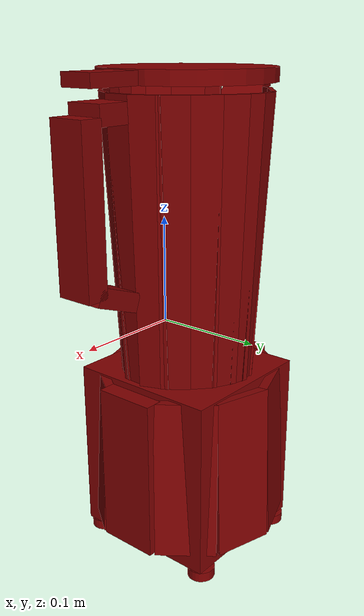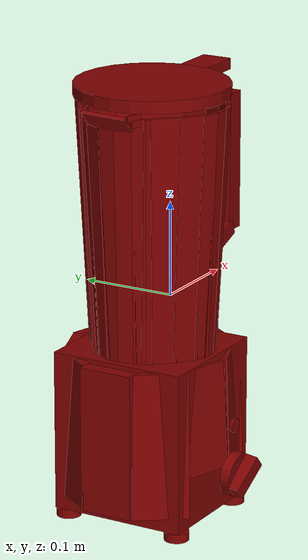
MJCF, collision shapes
<?xml version='1.0' encoding='UTF-8'?>
<mujoco model="model">
  <option timestep="0.002" gravity="0.0 0.0 -9.81"/>
  <compiler angle="radian"/>
  <asset>
    <mesh file="visuals/Blade001.obj" name="Blade001_vis"/>
    <mesh file="visuals/Body001.obj" name="Body001_vis"/>
    <mesh file="visuals/Button001.obj" name="Button001_vis"/>
    <mesh file="visuals/Jug001.obj" name="Jug001_vis"/>
    <mesh file="visuals/Jug001_Clear.obj" name="Jug001_Clear_vis"/>
    <mesh file="visuals/Knob001.obj" name="Knob001_vis"/>
    <mesh file="visuals/Lid001.obj" name="Lid001_vis"/>
    <texture file="visuals/T_BC001.png" name="Body001_material" type="2d"/>
    <material name="Body001_material" rgba="1 1 1 1.0" texture="Body001_material" shininess="0.1" specular="4"/>
    <texture file="visuals/T_BC001.png" name="Button001_material" type="2d"/>
    <material name="Button001_material" rgba="1 1 1 1.0" texture="Button001_material" shininess="0.1" specular="4"/>
    <texture file="visuals/T_BC001.png" name="Jug001_Clear_material" type="2d"/>
    <material name="Jug001_Clear_material" rgba="1 1 1 0.699999988079071" texture="Jug001_Clear_material" shininess="0.141421377658844" specular="0.3103448502657381"/>
    <texture file="visuals/T_BC001.png" name="Blade001_material" type="2d"/>
    <material name="Blade001_material" rgba="1 1 1 1.0" texture="Blade001_material" shininess="0.1" specular="4"/>
    <texture file="visuals/T_BC001.png" name="Jug001_material" type="2d"/>
    <material name="Jug001_material" rgba="1 1 1 1.0" texture="Jug001_material" shininess="0.1" specular="4"/>
    <texture file="visuals/T_BC001.png" name="Lid001_material" type="2d"/>
    <material name="Lid001_material" rgba="1 1 1 1.0" texture="Lid001_material" shininess="0.1" specular="4"/>
    <texture file="visuals/T_BC001.png" name="Knob001_material" type="2d"/>
    <material name="Knob001_material" rgba="1 1 1 1.0" texture="Knob001_material" shininess="0.1" specular="4"/>
  </asset>
  <default>
    <default class="visual">
      <geom conaffinity="0" contype="0" group="1" type="mesh"/>
    </default>
    <default class="collision">
      <geom group="0" rgba="0.5 0 0 0.5"/>
    </default>
    <default class="spawn">
      <geom group="0" rgba="1 1 1 0.5" contype="0" conaffinity="0"/>
      <site group="0" rgba="1 1 1 0.5"/>
    </default>
    <default class="region">
      <geom group="1" conaffinity="0" contype="0" rgba="0 1 0 0"/>
    </default>
  </default>
  <worldbody>
    <body>
      <body name="object">
        <geom mesh="Body001_vis" type="mesh" solimp="0.998 0.998 0.001" solref="0.001 1" friction="0.95 0.3 0.1" class="visual" material="Body001_material"/>
        <geom class="collision" type="box" pos="-0.020425 0.010578 -0.135682" size="0.07114976644515991 0.07396972179412842 0.08590729534626007" quat="1.0 0.0 0.0 0.0" density="1000.0"/>
        <geom class="collision" type="cylinder" pos="-0.079273 -0.054104 -0.227276" size="0.01308267842978239 0.00483639445155859" quat="1.0 0.0 0.0 0.0" density="1000.0"/>
        <geom class="collision" type="cylinder" pos="0.038333 -0.054104 -0.227276" size="0.01308267842978239 0.00483639445155859" quat="1.0 0.0 0.0 0.0" density="1000.0"/>
        <geom class="collision" type="cylinder" pos="-0.079273 0.075818 -0.227276" size="0.01308267842978239 0.00483639445155859" quat="1.0 0.0 0.0 0.0" density="1000.0"/>
        <geom class="collision" type="cylinder" pos="0.038333 0.075818 -0.227276" size="0.01308267842978239 0.00483639445155859" quat="1.0 0.0 0.0 0.0" density="1000.0"/>
        <geom class="collision" type="box" pos="-0.106769 0.009860 -0.129311" size="0.007698316592723131 0.02908378839492798 0.07778923213481903" quat="1.0 0.0 0.0 0.0" density="1000.0"/>
        <geom class="collision" type="box" pos="-0.093076 0.057243 -0.129311" size="0.0043806531466543674 0.029083790257573128 0.07767295092344284" quat="0.9581294655799866 0.006108235102146864 0.02049650065600872 -0.28553539514541626" density="1000.0"/>
        <geom class="collision" type="box" pos="-0.051305 0.091214 -0.129311" size="0.00438065268099308 0.029083792120218277 0.07767295092344284" quat="0.8213495016098022 0.012194070965051651 0.01757046952843666 -0.5700241923332214" density="1000.0"/>
        <geom class="collision" type="box" pos="0.002473 0.093833 -0.129311" size="0.0043806531466543674 0.02908378094434738 0.07767295092344284" quat="0.6026906967163086 0.017064303159713745 0.01289287582039833 -0.7976882457733154" density="1000.0"/>
        <geom class="collision" type="box" pos="0.047348 0.064081 -0.129311" size="0.004380653612315655 0.02908378839492798 0.07767295092344284" quat="0.3239506483078003 0.020233428105711937 0.006930013187229633 -0.9458321928977966" density="1000.0"/>
        <geom class="collision" type="box" pos="0.065871 0.013526 -0.129311" size="0.008447176776826382 0.02927297353744507 0.07778921723365784" quat="1.0 0.0 0.0 0.0" density="1000.0"/>
        <geom class="collision" type="box" pos="0.050841 -0.038176 -0.129311" size="0.0043806531466543674 0.029083792120218277 0.07767295092344284" quat="0.29940521717071533 -0.020405719056725502 0.0064049335196614265 0.9538863301277161" density="1000.0"/>
        <geom class="collision" type="box" pos="0.006934 -0.067495 -0.108718" size="0.0016447921516373754 0.02908378653228283 0.05694369226694107" quat="0.5818799734115601 -0.017391711473464966 0.012447686865925789 0.8129934072494507" density="1000.0"/>
        <geom class="collision" type="box" pos="-0.044628 -0.068487 -0.109307" size="0.0015786336734890938 0.029083790257573128 0.05753026157617569" quat="0.8063479661941528 -0.012643959373235703 0.01724955067038536 0.5910546183586121" density="1000.0"/>
        <geom class="collision" type="box" pos="-0.089722 -0.040937 -0.129311" size="0.004380652215331793 0.02908378653228283 0.07767295092344284" quat="0.9504324793815613 -0.006635751109570265 0.02033185213804245 0.31019455194473267" density="1000.0"/>
        <body name="Button001">
          <joint axis="0.0 1.0 0.0" pos="-0.045038 -0.085252 -0.155139" limited="true" name="Button001_joint" range="0.0 0.0005" type="slide" damping="1" frictionloss="1" armature=".01" stiffness="0.05"/>
          <geom mesh="Button001_vis" type="mesh" solimp="0.998 0.998 0.001" solref="0.001 1" friction="0.95 0.3 0.1" class="visual" material="Button001_material"/>
          <geom class="collision" type="cylinder" pos="-0.019819 -0.088158 -0.120115" size="0.007343614939600229 0.0016827437793835998" quat="0.7071067094802856 0.7071068286895752 0.0 0.0" density="1000.0"/>
        </body>
        <body name="Jug001_Clear">
          <geom class="region" name="reg_int" type="box" pos="-0.020664 0.009729500000000002 0.09984649999999999" size="0.063328 0.0627345 0.1166465"/>
          <joint axis="0.0 0.0 1.0" pos="0.000791 0.008689 0.084590" limited="true" name="Jug001_Clear_joint" range="0.0 0.1" type="slide" damping="1" frictionloss="1" armature=".01" stiffness="0.05"/>
          <geom mesh="Jug001_Clear_vis" type="mesh" solimp="0.998 0.998 0.001" solref="0.001 1" friction="0.95 0.3 0.1" class="visual" material="Jug001_Clear_material"/>
          <geom class="collision" type="box" pos="-0.059117 0.064398 0.081959" size="0.028023838996887207 0.0020834733732044697 0.13005328178405762" quat="0.9469504356384277 -0.02456554025411606 -0.008309957571327686 0.3203316628932953" density="1000.0"/>
          <geom class="collision" type="box" pos="0.002601 0.076044 0.081927" size="0.012392974458634853 0.0014961141860112548 0.12993013858795166" quat="0.9747089147567749 -0.025285642594099045 0.00575824873521924 -0.22196851670742035" density="1000.0"/>
          <geom class="collision" type="box" pos="-0.029463 0.081530 0.081655" size="0.009814273566007614 0.0016803478356450796 0.1300542801618576" quat="0.996727466583252 -0.025856811553239822 -0.0019861608743667603 0.07656250149011612" density="1000.0"/>
          <geom class="collision" type="box" pos="0.101808 -0.001526 0.121730" size="0.010741529986262321 0.01777033507823944 0.0739496573805809" quat="1.0 0.0 0.0 0.0" density="1000.0"/>
          <geom class="collision" type="box" pos="0.076898 -0.001526 0.043010" size="0.008844220079481602 0.01777033880352974 0.024057047441601753" quat="0.5734533071517944 -4.337584148605229e-15 -0.8192382454872131 -1.1007189471001766e-07" density="1000.0"/>
          <geom class="collision" type="box" pos="0.074342 -0.001526 0.197213" size="0.018335478380322456 0.017770294100046158 0.008909444324672222" quat="1.0 0.0 0.0 0.0" density="1000.0"/>
          <geom class="collision" type="box" pos="-0.013637 0.081463 0.081713" size="0.009814273566007614 0.0016803450416773558 0.1300542801618576" quat="0.9917929768562317 -0.025728829205036163 0.0032478119246661663 -0.1251964271068573" density="1000.0"/>
          <geom class="collision" type="box" pos="0.021820 0.063216 0.081892" size="0.013895096257328987 0.001496114069595933 0.13005328178405762" quat="0.9332175850868225 -0.02420927956700325 0.009296861477196217 -0.3583747446537018" density="1000.0"/>
          <geom class="collision" type="box" pos="0.038940 0.044985 0.081822" size="0.013895098119974136 0.0014961148845031857 0.1301158219575882" quat="0.8938452005386353 -0.023187892511487007 0.011612174101173878 -0.44762516021728516" density="1000.0"/>
          <geom class="collision" type="box" pos="0.049548 0.026145 0.081767" size="0.013895098119974136 0.001496114069595933 0.13005328178405762" quat="0.8285778164863586 -0.021494749933481216 0.01450851745903492 -0.5592730045318604" density="1000.0"/>
          <geom class="collision" type="box" pos="0.051627 0.002516 0.081692" size="0.013895095326006413 0.0014961144188418984 0.1301158219575882" quat="0.6938533186912537 -0.017999760806560516 0.018668951466679573 -0.7196492552757263" density="1000.0"/>
          <geom class="collision" type="box" pos="0.044334 -0.019255 0.081908" size="0.013895101845264435 0.0014961172128096223 0.13005328178405762" quat="0.4744383990764618 -0.012307754717767239 0.02282630279660225 -0.8799066543579102" density="1000.0"/>
          <geom class="collision" type="box" pos="0.027787 -0.039090 0.082002" size="0.013895097188651562 0.0014961173292249441 0.13005328178405762" quat="0.3675457537174225 -0.009534777142107487 0.024116583168506622 -0.9296438097953796" density="1000.0"/>
          <geom class="collision" type="box" pos="0.007308 -0.055324 0.082150" size="0.013895098119974136 0.0014961144188418984 0.12987081706523895" quat="0.27956363558769226 -0.007252366282045841 0.02489827573299408 -0.9597768783569336" density="1000.0"/>
          <geom class="collision" type="box" pos="-0.010352 -0.063875 0.081897" size="0.00841239932924509 0.001496114069595933 0.12990111112594604" quat="0.10235937684774399 -0.002655386459082365 0.02579679898917675 -0.9944093823432922" density="1000.0"/>
          <geom class="collision" type="box" pos="-0.025328 -0.065656 0.081740" size="0.00841239932924509 0.0014961144188418984 0.13000434637069702" quat="0.014749111607670784 -0.0003826175525318831 -0.025930186733603477 0.9995548725128174" density="1000.0"/>
          <geom class="collision" type="box" pos="-0.038845 -0.063171 0.081827" size="0.008412400260567665 0.0014961141860112548 0.12996487319469452" quat="0.18885262310504913 -0.004899164661765099 -0.025466036051511765 0.9816629886627197" density="1000.0"/>
          <geom class="collision" type="box" pos="-0.055416 -0.052828 0.081903" size="0.013023199513554573 0.0014961143024265766 0.13005898892879486" quat="0.3136133849620819 -0.008135673590004444 -0.024623794481158257 0.9491965770721436" density="1000.0"/>
          <geom class="collision" type="box" pos="-0.076211 -0.032602 0.082008" size="0.01790199801325798 0.0014961148845031857 0.13000606000423431" quat="0.4126756191253662 -0.010705524124205112 -0.023620188236236572 0.9105088114738464" density="1000.0"/>
          <geom class="collision" type="box" pos="-0.080403 0.046393 0.081970" size="0.009814275428652763 0.001680344925262034 0.1299208700656891" quat="0.8943629860877991 -0.02320133149623871 -0.011585312895476818 0.44658970832824707" density="1000.0"/>
          <geom class="collision" type="box" pos="-0.089073 0.030584 0.075382" size="0.009814274497330189 0.0016803450416773558 0.12314633280038834" quat="0.835515558719635 -0.02167471870779991 -0.014238237403333187 0.5488545298576355" density="1000.0"/>
          <geom class="collision" type="box" pos="-0.092614 0.015737 0.075188" size="0.009814275428652763 0.0016803451580926776 0.12331690639257431" quat="0.724690854549408 -0.018799737095832825 -0.017863113433122635 0.6885859966278076" density="1000.0"/>
          <geom class="collision" type="box" pos="-0.091700 -0.001619 0.075315" size="0.009814274497330189 0.0016803448088467121 0.1232306957244873" quat="0.6293444037437439 -0.016326285898685455 -0.020148780196905136 0.7766937017440796" density="1000.0"/>
          <geom class="collision" type="box" pos="-0.087247 -0.017950 0.081988" size="0.009814273566007614 0.0016803448088467121 0.12987521290779114" quat="0.5572676658630371 -0.014456488192081451 -0.02152976021170616 0.8299278616905212" density="1000.0"/>
          <geom class="collision" type="box" pos="-0.105044 0.011516 0.207989" size="0.0253608338534832 0.0016803448088467121 0.010355044156312943" quat="0.6644766330718994 -0.25481677055358887 -0.2662017047405243 0.6501352787017822" density="1000.0"/>
          <geom class="collision" type="box" pos="-0.100480 0.039515 0.214238" size="0.009460925124585629 0.0009152903221547604 0.0032383257057517767" quat="0.9881901741027832 0.0 0.0 0.15323251485824585" density="1000.0"/>
          <geom class="collision" type="box" pos="-0.097472 0.040198 0.207827" size="0.006173263303935528 0.0009152903221547604 0.0036670449189841747" quat="0.9871951937675476 0.0 0.0 0.15951703488826752" density="1000.0"/>
          <geom class="collision" type="box" pos="-0.101875 -0.017288 0.214238" size="0.009460925124585629 0.0009152903221547604 0.0032383257057517767" quat="0.9885324835777283 0.0 -0.0 -0.15100839734077454" density="1000.0"/>
          <geom class="collision" type="box" pos="-0.099019 -0.018453 0.207827" size="0.006173263303935528 0.0009152903221547604 0.0036670449189841747" quat="0.9894733428955078 0.0 -0.0 -0.14471545815467834" density="1000.0"/>
          <body name="Blade001">
            <joint axis="0.0 0.0 1.0" pos="-0.020521 0.008475 0.016824" limited="false" name="Blade001_joint" range="0 360" type="hinge" damping="1" frictionloss="1" armature=".01" stiffness="0.05"/>
            <geom mesh="Blade001_vis" type="mesh" solimp="0.998 0.998 0.001" solref="0.001 1" friction="0.95 0.3 0.1" class="visual" material="Blade001_material"/>
            <geom class="collision" type="cylinder" pos="-0.020762 0.008603 0.015648" size="0.005578401032835245 0.009748686105012894" quat="1.0 0.0 0.0 0.0" density="1000.0"/>
            <geom class="collision" type="box" pos="-0.042655 0.008259 0.017690" size="0.005888754967600107 0.005354186054319143 0.0005539986887015402" quat="0.9403565526008606 0.22859342396259308 0.2510433495044708 0.021257082000374794" density="1000.0"/>
            <geom class="collision" type="box" pos="-0.035212 0.009072 0.014279" size="0.002375200856477022 0.005354185588657856 0.0005539986887015402" quat="0.9515479207038879 0.15689902007579803 0.2630090117454529 0.02766765095293522" density="1000.0"/>
            <geom class="collision" type="box" pos="-0.030513 0.009405 0.012824" size="0.002375200856477022 0.005354185588657856 0.0005539986887015402" quat="0.9828904867172241 0.15931963920593262 0.09243089705705643 -0.00021640831255353987" density="1000.0"/>
            <geom class="collision" type="box" pos="-0.025778 0.009499 0.012182" size="0.002375200856477022 0.005354185588657856 0.0005539986887015402" quat="0.9911357164382935 0.09542809426784515 0.09225142747163773 0.005761029198765755" density="1000.0"/>
            <geom class="collision" type="box" pos="-0.013339 0.007884 0.012458" size="0.002375201089307666 0.005354185588657856 0.0005539986887015402" quat="0.9974440336227417 -0.06621213257312775 0.0006647424306720495 0.026849370449781418" density="1000.0"/>
            <geom class="collision" type="box" pos="-0.008574 0.008177 0.012820" size="0.0023752006236463785 0.005354185588657856 0.0005539987469092011" quat="0.9935071468353271 -0.08202355355024338 -0.07651028037071228 -0.019022971391677856" density="1000.0"/>
            <geom class="collision" type="box" pos="-0.004265 0.007704 0.013615" size="0.002375200856477022 0.005354186054319143 0.0005539986887015402" quat="0.985020101070404 -0.1533612459897995 -0.07494162023067474 -0.02448371797800064" density="1000.0"/>
            <geom class="collision" type="box" pos="0.000610 0.007834 0.015193" size="0.002375201089307666 0.005354186054319143 0.0005539986887015402" quat="0.957770824432373 -0.15528972446918488 -0.24198324978351593 0.0020541767589747906" density="1000.0"/>
            <geom class="collision" type="box" pos="0.004691 0.008164 0.017214" size="0.002375200856477022 0.005354185588657856 0.0005539986887015402" quat="0.9437424540519714 -0.2432917356491089 -0.21870483458042145 0.04824477806687355" density="1000.0"/>
            <geom class="collision" type="box" pos="0.007151 0.008693 0.018938" size="0.002375200856477022 0.005354185588657856 0.0005539986887015402" quat="0.8137325048446655 -0.31561368703842163 -0.3493519723415375 0.340852826833725" density="1000.0"/>
            <geom class="collision" type="box" pos="-0.022311 0.023493 0.020433" size="0.002061778213828802 0.005354185588657856 0.0005539987469092011" quat="0.7475223541259766 0.29476454854011536 0.07653047889471054 -0.5903111696243286" density="1000.0"/>
            <geom class="collision" type="box" pos="-0.021835 0.019641 0.019098" size="0.002375200856477022 0.005354185588657856 0.0005539986887015402" quat="0.7485984563827515 0.2202669084072113 0.013303541578352451 -0.6252246499061584" density="1000.0"/>
            <geom class="collision" type="box" pos="-0.021108 0.015899 0.018358" size="0.002375200856477022 0.005354185122996569 0.0005539986887015402" quat="0.7479897737503052 0.18121476471424103 -0.03297616168856621 -0.6376402378082275" density="1000.0"/>
            <geom class="collision" type="box" pos="-0.020840 0.006913 0.017694" size="0.002375200856477022 0.005354185588657856 0.0005539986887015402" quat="0.7766215205192566 -0.04996641352772713 0.0434492826461792 -0.6264778971672058" density="1000.0"/>
            <geom class="collision" type="box" pos="-0.019822 0.002221 0.017868" size="0.002375200856477022 0.005354185588657856 0.0005539986887015402" quat="0.7438734173774719 -0.11205488443374634 -0.0050377692095935345 -0.6588404178619385" density="1000.0"/>
            <geom class="collision" type="box" pos="-0.019578 -0.002074 0.018851" size="0.002375200856477022 0.005354185122996569 0.0005539986887015402" quat="0.7338717579841614 -0.16533643007278442 0.04242377728223801 -0.657492458820343" density="1000.0"/>
            <geom class="collision" type="box" pos="-0.018592 -0.006673 0.020749" size="0.002375200856477022 0.005354185588657856 0.0005539986887015402" quat="0.7303425669670105 -0.2751429080963135 -0.08346966654062271 -0.6196200251579285" density="1000.0"/>
            <geom class="collision" type="box" pos="-0.018192 -0.010862 0.022835" size="0.002375200856477022 0.005354185588657856 0.0005539986887015402" quat="0.7495883703231812 -0.3710985481739044 -0.09950321167707443 -0.538982629776001" density="1000.0"/>
            <geom class="collision" type="box" pos="-0.017144 -0.012421 0.024364" size="0.002375200856477022 0.005354185588657856 0.0005539986887015402" quat="0.8404426574707031 -0.4668102562427521 -0.06121203675866127 -0.26832324266433716" density="1000.0"/>
            <geom class="collision" type="box" pos="-0.022938 0.026926 0.022525" size="0.002061778213828802 0.005354185588657856 0.0005539987469092011" quat="0.740454375743866 0.31209465861320496 0.06276106834411621 -0.59193354845047" density="1000.0"/>
            <geom class="collision" type="box" pos="-0.024203 0.030077 0.024873" size="0.002061778213828802 0.005354185122996569 0.0005539987469092011" quat="0.7192190885543823 0.35832902789115906 0.025174571201205254 -0.5947188138961792" density="1000.0"/>
          </body>
          <body name="Jug001">
            <geom mesh="Jug001_vis" type="mesh" solimp="0.998 0.998 0.001" solref="0.001 1" friction="0.95 0.3 0.1" class="visual" material="Jug001_material"/>
            <geom class="collision" type="cylinder" pos="-0.020375 0.008347 -0.008680" size="0.017309583723545074 0.013339472934603691" quat="1.0 0.0 0.0 0.0" density="1000.0"/>
            <geom class="collision" type="cylinder" pos="-0.019216 0.008508 -0.043675" size="0.04706339165568352 0.003497780067846179" quat="1.0 0.0 0.0 0.0" density="1000.0"/>
            <geom class="collision" type="cylinder" pos="-0.019216 0.008508 -0.038410" size="0.03889162465929985 0.0028904490172863007" quat="1.0 0.0 0.0 0.0" density="1000.0"/>
            <geom class="collision" type="cylinder" pos="-0.019216 0.008508 -0.032873" size="0.03192101791501045 0.0023723894264549017" quat="1.0 0.0 0.0 0.0" density="1000.0"/>
            <geom class="collision" type="cylinder" pos="-0.019216 0.008508 -0.027956" size="0.026319386437535286 0.0019560728687793016" quat="1.0 0.0 0.0 0.0" density="1000.0"/>
          </body>
          <body name="Lid001">
            <joint axis="0.0 0.0 1.0" pos="0.002114 0.007527 0.211691" limited="true" name="Lid001_joint" range="0.0 0.1" type="slide" damping="1" frictionloss="1" armature=".01" stiffness="0.05"/>
            <geom mesh="Lid001_vis" type="mesh" solimp="0.998 0.998 0.001" solref="0.001 1" friction="0.95 0.3 0.1" class="visual" material="Lid001_material"/>
            <geom class="collision" type="box" pos="0.076378 0.005878 0.223889" size="0.030511468648910522 0.016071908175945282 0.005857323762029409" quat="1.0 0.0 0.0 0.0" density="1000.0"/>
            <geom class="collision" type="cylinder" pos="-0.023654 0.007627 0.224357" size="0.08035063743591309 0.006332592573016882" quat="1.0 0.0 0.0 0.0" density="1000.0"/>
          </body>
        </body>
        <body name="Knob001">
          <joint axis="-1.0883673370624386e-18 0.9950984716415405 0.09888920187950134" pos="-0.019276 -0.095814 -0.174621" limited="true" name="Knob001_joint" range="0.0 4.71238898038469" type="hinge" damping="0.05" armature="0.001" springref="-0.01"/>
          <geom mesh="Knob001_vis" type="mesh" solimp="0.998 0.998 0.001" solref="0.001 1" friction="0.95 0.3 0.1" class="visual" material="Knob001_material"/>
          <geom class="collision" type="cylinder" pos="-0.018720 -0.088521 -0.173764" size="0.023056725040078163 0.005283305421471596" quat="0.6761780381202698 0.7367382645606995 -6.723511375239752e-18 6.723515097552509e-18" density="1000.0"/>
          <geom class="collision" type="box" pos="-0.019484 -0.100198 -0.174144" size="0.00802884716540575 0.006722955498844385 0.021096782758831978" quat="0.9083757996559143 0.058258578181266785 0.41322752833366394 -0.026502244174480438" density="1000.0"/>
        </body>
        <geom class="region" name="reg_main" type="box" pos="-0.020540000000000003 0.0107205 0.0" size="0.095447 0.0980135 0.230815"/>
      </body>
    </body>
  </worldbody>
  <actuator>
    <motor name="Button001_joint_actuator" joint="Button001_joint" gear="0.5"/>
    <motor name="Jug001_Clear_joint_actuator" joint="Jug001_Clear_joint" gear="0.5"/>
    <motor name="Knob001_joint_actuator" joint="Knob001_joint" gear="0.5"/>
    <motor name="Blade001_joint_actuator" joint="Blade001_joint" gear="30"/>
    <motor name="Lid001_joint_actuator" joint="Lid001_joint" gear="0.5"/>
  </actuator>
</mujoco>
